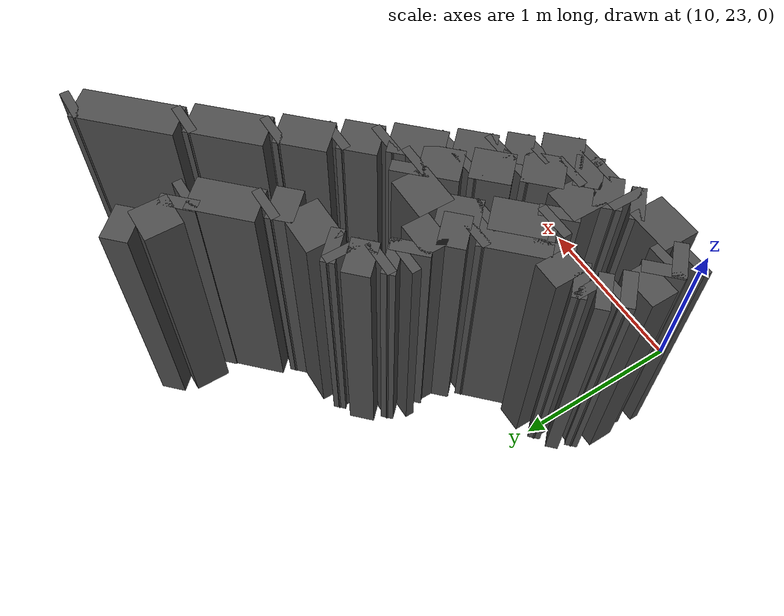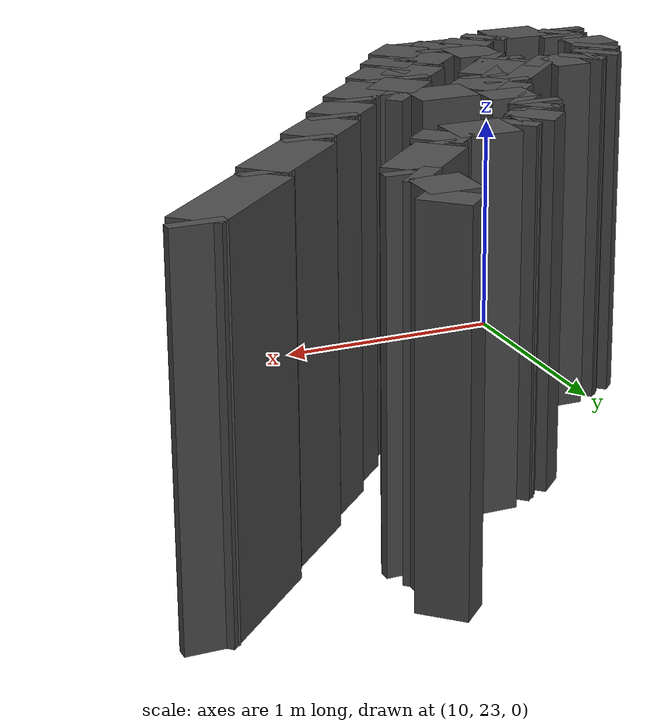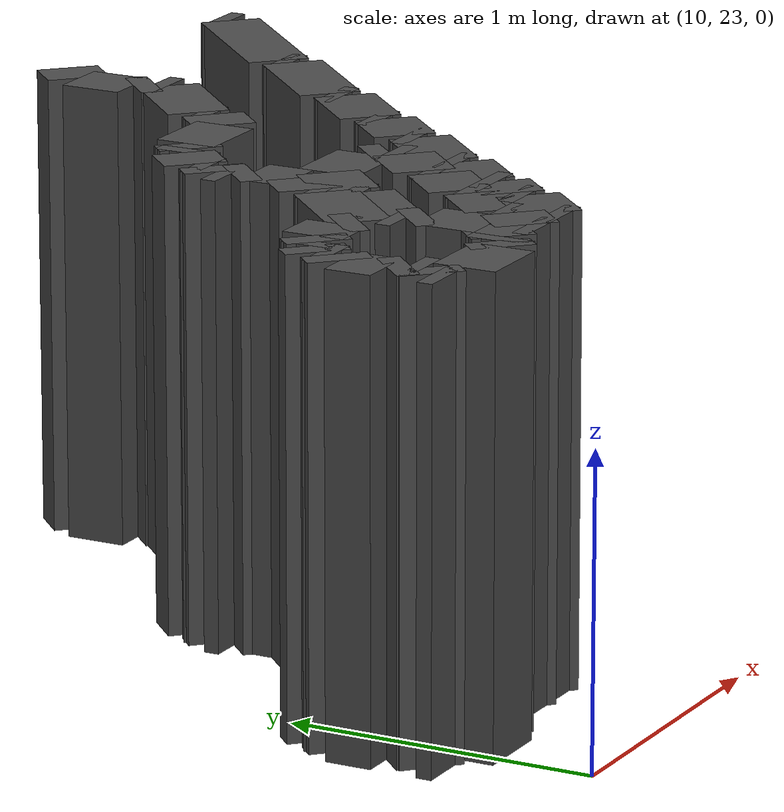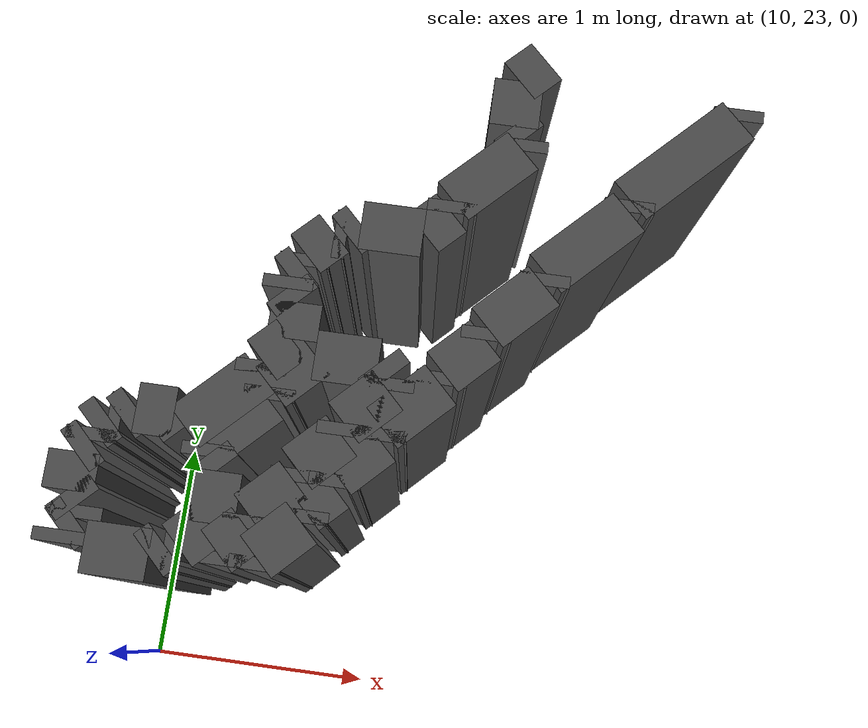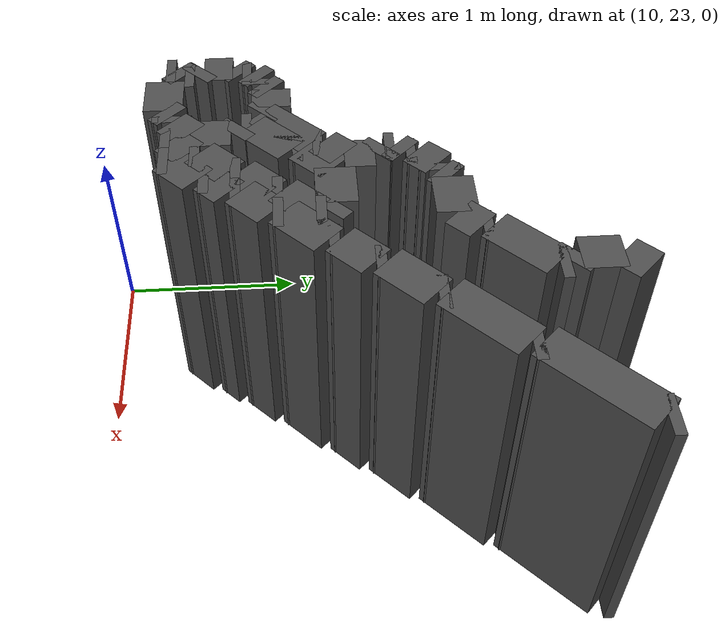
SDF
<sdf version="1.9">
 <model name="generated_walls">
  <static>true</static>
  <link name="wall_161_281">
   <pose>9.850 23.425 0.75 0 0 1.571</pose>
   <collision name="collision"><geometry><box><size>0.050 0.2 1.5</size></box></geometry></collision>
   <visual name="visual">
    <geometry><box><size>0.050 0.2 1.5</size></box></geometry>
    <material><ambient>0.3 0.3 0.3 1</ambient></material>
   </visual>
  </link>
  <link name="wall_161_282">
   <pose>9.875 23.475 0.75 0 0 0.785</pose>
   <collision name="collision"><geometry><box><size>0.071 0.2 1.5</size></box></geometry></collision>
   <visual name="visual">
    <geometry><box><size>0.071 0.2 1.5</size></box></geometry>
    <material><ambient>0.3 0.3 0.3 1</ambient></material>
   </visual>
  </link>
  <link name="wall_161_283">
   <pose>9.900 23.525 0.75 0 0 1.571</pose>
   <collision name="collision"><geometry><box><size>0.050 0.2 1.5</size></box></geometry></collision>
   <visual name="visual">
    <geometry><box><size>0.050 0.2 1.5</size></box></geometry>
    <material><ambient>0.3 0.3 0.3 1</ambient></material>
   </visual>
  </link>
  <link name="wall_161_284">
   <pose>9.875 23.575 0.75 0 0 2.356</pose>
   <collision name="collision"><geometry><box><size>0.071 0.2 1.5</size></box></geometry></collision>
   <visual name="visual">
    <geometry><box><size>0.071 0.2 1.5</size></box></geometry>
    <material><ambient>0.3 0.3 0.3 1</ambient></material>
   </visual>
  </link>
  <link name="wall_161_285">
   <pose>9.850 23.675 0.75 0 0 1.571</pose>
   <collision name="collision"><geometry><box><size>0.150 0.2 1.5</size></box></geometry></collision>
   <visual name="visual">
    <geometry><box><size>0.150 0.2 1.5</size></box></geometry>
    <material><ambient>0.3 0.3 0.3 1</ambient></material>
   </visual>
  </link>
  <link name="wall_161_286">
   <pose>9.875 23.775 0.75 0 0 0.785</pose>
   <collision name="collision"><geometry><box><size>0.071 0.2 1.5</size></box></geometry></collision>
   <visual name="visual">
    <geometry><box><size>0.071 0.2 1.5</size></box></geometry>
    <material><ambient>0.3 0.3 0.3 1</ambient></material>
   </visual>
  </link>
  <link name="wall_161_287">
   <pose>9.900 23.825 0.75 0 0 1.571</pose>
   <collision name="collision"><geometry><box><size>0.050 0.2 1.5</size></box></geometry></collision>
   <visual name="visual">
    <geometry><box><size>0.050 0.2 1.5</size></box></geometry>
    <material><ambient>0.3 0.3 0.3 1</ambient></material>
   </visual>
  </link>
  <link name="wall_161_288">
   <pose>9.925 23.875 0.75 0 0 0.785</pose>
   <collision name="collision"><geometry><box><size>0.071 0.2 1.5</size></box></geometry></collision>
   <visual name="visual">
    <geometry><box><size>0.071 0.2 1.5</size></box></geometry>
    <material><ambient>0.3 0.3 0.3 1</ambient></material>
   </visual>
  </link>
  <link name="wall_161_289">
   <pose>9.975 23.900 0.75 0 0 0.000</pose>
   <collision name="collision"><geometry><box><size>0.050 0.2 1.5</size></box></geometry></collision>
   <visual name="visual">
    <geometry><box><size>0.050 0.2 1.5</size></box></geometry>
    <material><ambient>0.3 0.3 0.3 1</ambient></material>
   </visual>
  </link>
  <link name="wall_161_290">
   <pose>10.025 23.925 0.75 0 0 0.785</pose>
   <collision name="collision"><geometry><box><size>0.071 0.2 1.5</size></box></geometry></collision>
   <visual name="visual">
    <geometry><box><size>0.071 0.2 1.5</size></box></geometry>
    <material><ambient>0.3 0.3 0.3 1</ambient></material>
   </visual>
  </link>
  <link name="wall_161_291">
   <pose>10.125 23.950 0.75 0 0 0.000</pose>
   <collision name="collision"><geometry><box><size>0.150 0.2 1.5</size></box></geometry></collision>
   <visual name="visual">
    <geometry><box><size>0.150 0.2 1.5</size></box></geometry>
    <material><ambient>0.3 0.3 0.3 1</ambient></material>
   </visual>
  </link>
  <link name="wall_161_292">
   <pose>10.225 23.925 0.75 0 0 -0.785</pose>
   <collision name="collision"><geometry><box><size>0.071 0.2 1.5</size></box></geometry></collision>
   <visual name="visual">
    <geometry><box><size>0.071 0.2 1.5</size></box></geometry>
    <material><ambient>0.3 0.3 0.3 1</ambient></material>
   </visual>
  </link>
  <link name="wall_161_293">
   <pose>10.375 24.025 0.75 0 0 0.785</pose>
   <collision name="collision"><geometry><box><size>0.354 0.2 1.5</size></box></geometry></collision>
   <visual name="visual">
    <geometry><box><size>0.354 0.2 1.5</size></box></geometry>
    <material><ambient>0.3 0.3 0.3 1</ambient></material>
   </visual>
  </link>
  <link name="wall_161_294">
   <pose>10.500 24.175 0.75 0 0 1.571</pose>
   <collision name="collision"><geometry><box><size>0.050 0.2 1.5</size></box></geometry></collision>
   <visual name="visual">
    <geometry><box><size>0.050 0.2 1.5</size></box></geometry>
    <material><ambient>0.3 0.3 0.3 1</ambient></material>
   </visual>
  </link>
  <link name="wall_161_295">
   <pose>10.550 24.250 0.75 0 0 0.785</pose>
   <collision name="collision"><geometry><box><size>0.141 0.2 1.5</size></box></geometry></collision>
   <visual name="visual">
    <geometry><box><size>0.141 0.2 1.5</size></box></geometry>
    <material><ambient>0.3 0.3 0.3 1</ambient></material>
   </visual>
  </link>
  <link name="wall_161_296">
   <pose>10.600 24.375 0.75 0 0 1.571</pose>
   <collision name="collision"><geometry><box><size>0.150 0.2 1.5</size></box></geometry></collision>
   <visual name="visual">
    <geometry><box><size>0.150 0.2 1.5</size></box></geometry>
    <material><ambient>0.3 0.3 0.3 1</ambient></material>
   </visual>
  </link>
  <link name="wall_161_297">
   <pose>10.575 24.475 0.75 0 0 2.356</pose>
   <collision name="collision"><geometry><box><size>0.071 0.2 1.5</size></box></geometry></collision>
   <visual name="visual">
    <geometry><box><size>0.071 0.2 1.5</size></box></geometry>
    <material><ambient>0.3 0.3 0.3 1</ambient></material>
   </visual>
  </link>
  <link name="wall_161_298">
   <pose>10.550 24.525 0.75 0 0 1.571</pose>
   <collision name="collision"><geometry><box><size>0.050 0.2 1.5</size></box></geometry></collision>
   <visual name="visual">
    <geometry><box><size>0.050 0.2 1.5</size></box></geometry>
    <material><ambient>0.3 0.3 0.3 1</ambient></material>
   </visual>
  </link>
  <link name="wall_161_299">
   <pose>10.575 24.575 0.75 0 0 0.785</pose>
   <collision name="collision"><geometry><box><size>0.071 0.2 1.5</size></box></geometry></collision>
   <visual name="visual">
    <geometry><box><size>0.071 0.2 1.5</size></box></geometry>
    <material><ambient>0.3 0.3 0.3 1</ambient></material>
   </visual>
  </link>
  <link name="wall_161_300">
   <pose>10.600 24.625 0.75 0 0 1.571</pose>
   <collision name="collision"><geometry><box><size>0.050 0.2 1.5</size></box></geometry></collision>
   <visual name="visual">
    <geometry><box><size>0.050 0.2 1.5</size></box></geometry>
    <material><ambient>0.3 0.3 0.3 1</ambient></material>
   </visual>
  </link>
  <link name="wall_161_301">
   <pose>10.650 24.700 0.75 0 0 0.785</pose>
   <collision name="collision"><geometry><box><size>0.141 0.2 1.5</size></box></geometry></collision>
   <visual name="visual">
    <geometry><box><size>0.141 0.2 1.5</size></box></geometry>
    <material><ambient>0.3 0.3 0.3 1</ambient></material>
   </visual>
  </link>
  <link name="wall_161_302">
   <pose>10.725 24.750 0.75 0 0 0.000</pose>
   <collision name="collision"><geometry><box><size>0.050 0.2 1.5</size></box></geometry></collision>
   <visual name="visual">
    <geometry><box><size>0.050 0.2 1.5</size></box></geometry>
    <material><ambient>0.3 0.3 0.3 1</ambient></material>
   </visual>
  </link>
  <link name="wall_161_303">
   <pose>10.775 24.775 0.75 0 0 0.785</pose>
   <collision name="collision"><geometry><box><size>0.071 0.2 1.5</size></box></geometry></collision>
   <visual name="visual">
    <geometry><box><size>0.071 0.2 1.5</size></box></geometry>
    <material><ambient>0.3 0.3 0.3 1</ambient></material>
   </visual>
  </link>
  <link name="wall_161_304">
   <pose>10.925 24.800 0.75 0 0 0.000</pose>
   <collision name="collision"><geometry><box><size>0.250 0.2 1.5</size></box></geometry></collision>
   <visual name="visual">
    <geometry><box><size>0.250 0.2 1.5</size></box></geometry>
    <material><ambient>0.3 0.3 0.3 1</ambient></material>
   </visual>
  </link>
  <link name="wall_161_305">
   <pose>11.100 24.850 0.75 0 0 0.785</pose>
   <collision name="collision"><geometry><box><size>0.141 0.2 1.5</size></box></geometry></collision>
   <visual name="visual">
    <geometry><box><size>0.141 0.2 1.5</size></box></geometry>
    <material><ambient>0.3 0.3 0.3 1</ambient></material>
   </visual>
  </link>
  <link name="wall_161_306">
   <pose>11.150 24.925 0.75 0 0 1.571</pose>
   <collision name="collision"><geometry><box><size>0.050 0.2 1.5</size></box></geometry></collision>
   <visual name="visual">
    <geometry><box><size>0.050 0.2 1.5</size></box></geometry>
    <material><ambient>0.3 0.3 0.3 1</ambient></material>
   </visual>
  </link>
  <link name="wall_161_307">
   <pose>11.275 25.075 0.75 0 0 0.785</pose>
   <collision name="collision"><geometry><box><size>0.354 0.2 1.5</size></box></geometry></collision>
   <visual name="visual">
    <geometry><box><size>0.354 0.2 1.5</size></box></geometry>
    <material><ambient>0.3 0.3 0.3 1</ambient></material>
   </visual>
  </link>
  <link name="wall_161_308">
   <pose>11.400 25.225 0.75 0 0 1.571</pose>
   <collision name="collision"><geometry><box><size>0.050 0.2 1.5</size></box></geometry></collision>
   <visual name="visual">
    <geometry><box><size>0.050 0.2 1.5</size></box></geometry>
    <material><ambient>0.3 0.3 0.3 1</ambient></material>
   </visual>
  </link>
  <link name="wall_161_309">
   <pose>11.375 25.275 0.75 0 0 2.356</pose>
   <collision name="collision"><geometry><box><size>0.071 0.2 1.5</size></box></geometry></collision>
   <visual name="visual">
    <geometry><box><size>0.071 0.2 1.5</size></box></geometry>
    <material><ambient>0.3 0.3 0.3 1</ambient></material>
   </visual>
  </link>
  <link name="wall_161_310">
   <pose>11.350 25.400 0.75 0 0 1.571</pose>
   <collision name="collision"><geometry><box><size>0.200 0.2 1.5</size></box></geometry></collision>
   <visual name="visual">
    <geometry><box><size>0.200 0.2 1.5</size></box></geometry>
    <material><ambient>0.3 0.3 0.3 1</ambient></material>
   </visual>
  </link>
  <link name="wall_161_311">
   <pose>11.400 25.550 0.75 0 0 0.785</pose>
   <collision name="collision"><geometry><box><size>0.141 0.2 1.5</size></box></geometry></collision>
   <visual name="visual">
    <geometry><box><size>0.141 0.2 1.5</size></box></geometry>
    <material><ambient>0.3 0.3 0.3 1</ambient></material>
   </visual>
  </link>
  <link name="wall_161_711">
   <pose>12.250 25.475 0.75 0 0 -1.571</pose>
   <collision name="collision"><geometry><box><size>0.050 0.2 1.5</size></box></geometry></collision>
   <visual name="visual">
    <geometry><box><size>0.050 0.2 1.5</size></box></geometry>
    <material><ambient>0.3 0.3 0.3 1</ambient></material>
   </visual>
  </link>
  <link name="wall_161_712">
   <pose>12.050 25.250 0.75 0 0 -2.356</pose>
   <collision name="collision"><geometry><box><size>0.566 0.2 1.5</size></box></geometry></collision>
   <visual name="visual">
    <geometry><box><size>0.566 0.2 1.5</size></box></geometry>
    <material><ambient>0.3 0.3 0.3 1</ambient></material>
   </visual>
  </link>
  <link name="wall_161_713">
   <pose>11.850 25.025 0.75 0 0 -1.571</pose>
   <collision name="collision"><geometry><box><size>0.050 0.2 1.5</size></box></geometry></collision>
   <visual name="visual">
    <geometry><box><size>0.050 0.2 1.5</size></box></geometry>
    <material><ambient>0.3 0.3 0.3 1</ambient></material>
   </visual>
  </link>
  <link name="wall_161_714">
   <pose>11.700 24.850 0.75 0 0 -2.356</pose>
   <collision name="collision"><geometry><box><size>0.424 0.2 1.5</size></box></geometry></collision>
   <visual name="visual">
    <geometry><box><size>0.424 0.2 1.5</size></box></geometry>
    <material><ambient>0.3 0.3 0.3 1</ambient></material>
   </visual>
  </link>
  <link name="wall_161_715">
   <pose>11.550 24.675 0.75 0 0 -1.571</pose>
   <collision name="collision"><geometry><box><size>0.050 0.2 1.5</size></box></geometry></collision>
   <visual name="visual">
    <geometry><box><size>0.050 0.2 1.5</size></box></geometry>
    <material><ambient>0.3 0.3 0.3 1</ambient></material>
   </visual>
  </link>
  <link name="wall_161_716">
   <pose>11.450 24.550 0.75 0 0 -2.356</pose>
   <collision name="collision"><geometry><box><size>0.283 0.2 1.5</size></box></geometry></collision>
   <visual name="visual">
    <geometry><box><size>0.283 0.2 1.5</size></box></geometry>
    <material><ambient>0.3 0.3 0.3 1</ambient></material>
   </visual>
  </link>
  <link name="wall_161_717">
   <pose>11.350 24.425 0.75 0 0 -1.571</pose>
   <collision name="collision"><geometry><box><size>0.050 0.2 1.5</size></box></geometry></collision>
   <visual name="visual">
    <geometry><box><size>0.050 0.2 1.5</size></box></geometry>
    <material><ambient>0.3 0.3 0.3 1</ambient></material>
   </visual>
  </link>
  <link name="wall_161_718">
   <pose>11.275 24.325 0.75 0 0 -2.356</pose>
   <collision name="collision"><geometry><box><size>0.212 0.2 1.5</size></box></geometry></collision>
   <visual name="visual">
    <geometry><box><size>0.212 0.2 1.5</size></box></geometry>
    <material><ambient>0.3 0.3 0.3 1</ambient></material>
   </visual>
  </link>
  <link name="wall_161_719">
   <pose>11.200 24.225 0.75 0 0 -1.571</pose>
   <collision name="collision"><geometry><box><size>0.050 0.2 1.5</size></box></geometry></collision>
   <visual name="visual">
    <geometry><box><size>0.050 0.2 1.5</size></box></geometry>
    <material><ambient>0.3 0.3 0.3 1</ambient></material>
   </visual>
  </link>
  <link name="wall_161_720">
   <pose>11.100 24.100 0.75 0 0 -2.356</pose>
   <collision name="collision"><geometry><box><size>0.283 0.2 1.5</size></box></geometry></collision>
   <visual name="visual">
    <geometry><box><size>0.283 0.2 1.5</size></box></geometry>
    <material><ambient>0.3 0.3 0.3 1</ambient></material>
   </visual>
  </link>
  <link name="wall_161_721">
   <pose>11.000 23.975 0.75 0 0 -1.571</pose>
   <collision name="collision"><geometry><box><size>0.050 0.2 1.5</size></box></geometry></collision>
   <visual name="visual">
    <geometry><box><size>0.050 0.2 1.5</size></box></geometry>
    <material><ambient>0.3 0.3 0.3 1</ambient></material>
   </visual>
  </link>
  <link name="wall_161_722">
   <pose>10.925 23.875 0.75 0 0 -2.356</pose>
   <collision name="collision"><geometry><box><size>0.212 0.2 1.5</size></box></geometry></collision>
   <visual name="visual">
    <geometry><box><size>0.212 0.2 1.5</size></box></geometry>
    <material><ambient>0.3 0.3 0.3 1</ambient></material>
   </visual>
  </link>
  <link name="wall_161_723">
   <pose>10.850 23.775 0.75 0 0 -1.571</pose>
   <collision name="collision"><geometry><box><size>0.050 0.2 1.5</size></box></geometry></collision>
   <visual name="visual">
    <geometry><box><size>0.050 0.2 1.5</size></box></geometry>
    <material><ambient>0.3 0.3 0.3 1</ambient></material>
   </visual>
  </link>
  <link name="wall_161_724">
   <pose>10.800 23.700 0.75 0 0 -2.356</pose>
   <collision name="collision"><geometry><box><size>0.141 0.2 1.5</size></box></geometry></collision>
   <visual name="visual">
    <geometry><box><size>0.141 0.2 1.5</size></box></geometry>
    <material><ambient>0.3 0.3 0.3 1</ambient></material>
   </visual>
  </link>
  <link name="wall_161_725">
   <pose>10.750 23.625 0.75 0 0 -1.571</pose>
   <collision name="collision"><geometry><box><size>0.050 0.2 1.5</size></box></geometry></collision>
   <visual name="visual">
    <geometry><box><size>0.050 0.2 1.5</size></box></geometry>
    <material><ambient>0.3 0.3 0.3 1</ambient></material>
   </visual>
  </link>
  <link name="wall_161_726">
   <pose>10.675 23.525 0.75 0 0 -2.356</pose>
   <collision name="collision"><geometry><box><size>0.212 0.2 1.5</size></box></geometry></collision>
   <visual name="visual">
    <geometry><box><size>0.212 0.2 1.5</size></box></geometry>
    <material><ambient>0.3 0.3 0.3 1</ambient></material>
   </visual>
  </link>
  <link name="wall_161_727">
   <pose>10.600 23.425 0.75 0 0 -1.571</pose>
   <collision name="collision"><geometry><box><size>0.050 0.2 1.5</size></box></geometry></collision>
   <visual name="visual">
    <geometry><box><size>0.050 0.2 1.5</size></box></geometry>
    <material><ambient>0.3 0.3 0.3 1</ambient></material>
   </visual>
  </link>
  <link name="wall_161_815">
   <pose>10.450 23.425 0.75 0 0 1.571</pose>
   <collision name="collision"><geometry><box><size>0.050 0.2 1.5</size></box></geometry></collision>
   <visual name="visual">
    <geometry><box><size>0.050 0.2 1.5</size></box></geometry>
    <material><ambient>0.3 0.3 0.3 1</ambient></material>
   </visual>
  </link>
  <link name="wall_161_816">
   <pose>10.500 23.500 0.75 0 0 0.785</pose>
   <collision name="collision"><geometry><box><size>0.141 0.2 1.5</size></box></geometry></collision>
   <visual name="visual">
    <geometry><box><size>0.141 0.2 1.5</size></box></geometry>
    <material><ambient>0.3 0.3 0.3 1</ambient></material>
   </visual>
  </link>
  <link name="wall_161_817">
   <pose>10.550 23.575 0.75 0 0 1.571</pose>
   <collision name="collision"><geometry><box><size>0.050 0.2 1.5</size></box></geometry></collision>
   <visual name="visual">
    <geometry><box><size>0.050 0.2 1.5</size></box></geometry>
    <material><ambient>0.3 0.3 0.3 1</ambient></material>
   </visual>
  </link>
  <link name="wall_161_818">
   <pose>10.625 23.675 0.75 0 0 0.785</pose>
   <collision name="collision"><geometry><box><size>0.212 0.2 1.5</size></box></geometry></collision>
   <visual name="visual">
    <geometry><box><size>0.212 0.2 1.5</size></box></geometry>
    <material><ambient>0.3 0.3 0.3 1</ambient></material>
   </visual>
  </link>
  <link name="wall_161_819">
   <pose>10.700 23.775 0.75 0 0 1.571</pose>
   <collision name="collision"><geometry><box><size>0.050 0.2 1.5</size></box></geometry></collision>
   <visual name="visual">
    <geometry><box><size>0.050 0.2 1.5</size></box></geometry>
    <material><ambient>0.3 0.3 0.3 1</ambient></material>
   </visual>
  </link>
  <link name="wall_161_820">
   <pose>10.775 23.875 0.75 0 0 0.785</pose>
   <collision name="collision"><geometry><box><size>0.212 0.2 1.5</size></box></geometry></collision>
   <visual name="visual">
    <geometry><box><size>0.212 0.2 1.5</size></box></geometry>
    <material><ambient>0.3 0.3 0.3 1</ambient></material>
   </visual>
  </link>
  <link name="wall_161_821">
   <pose>10.850 23.975 0.75 0 0 1.571</pose>
   <collision name="collision"><geometry><box><size>0.050 0.2 1.5</size></box></geometry></collision>
   <visual name="visual">
    <geometry><box><size>0.050 0.2 1.5</size></box></geometry>
    <material><ambient>0.3 0.3 0.3 1</ambient></material>
   </visual>
  </link>
  <link name="wall_161_822">
   <pose>10.925 24.075 0.75 0 0 0.785</pose>
   <collision name="collision"><geometry><box><size>0.212 0.2 1.5</size></box></geometry></collision>
   <visual name="visual">
    <geometry><box><size>0.212 0.2 1.5</size></box></geometry>
    <material><ambient>0.3 0.3 0.3 1</ambient></material>
   </visual>
  </link>
  <link name="wall_161_823">
   <pose>11.000 24.175 0.75 0 0 1.571</pose>
   <collision name="collision"><geometry><box><size>0.050 0.2 1.5</size></box></geometry></collision>
   <visual name="visual">
    <geometry><box><size>0.050 0.2 1.5</size></box></geometry>
    <material><ambient>0.3 0.3 0.3 1</ambient></material>
   </visual>
  </link>
  <link name="wall_161_824">
   <pose>10.975 24.225 0.75 0 0 2.356</pose>
   <collision name="collision"><geometry><box><size>0.071 0.2 1.5</size></box></geometry></collision>
   <visual name="visual">
    <geometry><box><size>0.071 0.2 1.5</size></box></geometry>
    <material><ambient>0.3 0.3 0.3 1</ambient></material>
   </visual>
  </link>
  <link name="wall_161_825">
   <pose>10.825 24.250 0.75 0 0 3.142</pose>
   <collision name="collision"><geometry><box><size>0.250 0.2 1.5</size></box></geometry></collision>
   <visual name="visual">
    <geometry><box><size>0.250 0.2 1.5</size></box></geometry>
    <material><ambient>0.3 0.3 0.3 1</ambient></material>
   </visual>
  </link>
  <link name="wall_161_826">
   <pose>10.625 24.175 0.75 0 0 -2.356</pose>
   <collision name="collision"><geometry><box><size>0.212 0.2 1.5</size></box></geometry></collision>
   <visual name="visual">
    <geometry><box><size>0.212 0.2 1.5</size></box></geometry>
    <material><ambient>0.3 0.3 0.3 1</ambient></material>
   </visual>
  </link>
  <link name="wall_161_827">
   <pose>10.550 24.075 0.75 0 0 -1.571</pose>
   <collision name="collision"><geometry><box><size>0.050 0.2 1.5</size></box></geometry></collision>
   <visual name="visual">
    <geometry><box><size>0.050 0.2 1.5</size></box></geometry>
    <material><ambient>0.3 0.3 0.3 1</ambient></material>
   </visual>
  </link>
  <link name="wall_161_828">
   <pose>10.450 23.950 0.75 0 0 -2.356</pose>
   <collision name="collision"><geometry><box><size>0.283 0.2 1.5</size></box></geometry></collision>
   <visual name="visual">
    <geometry><box><size>0.283 0.2 1.5</size></box></geometry>
    <material><ambient>0.3 0.3 0.3 1</ambient></material>
   </visual>
  </link>
  <link name="wall_161_829">
   <pose>10.350 23.825 0.75 0 0 -1.571</pose>
   <collision name="collision"><geometry><box><size>0.050 0.2 1.5</size></box></geometry></collision>
   <visual name="visual">
    <geometry><box><size>0.050 0.2 1.5</size></box></geometry>
    <material><ambient>0.3 0.3 0.3 1</ambient></material>
   </visual>
  </link>
  <link name="wall_161_830">
   <pose>10.375 23.775 0.75 0 0 -0.785</pose>
   <collision name="collision"><geometry><box><size>0.071 0.2 1.5</size></box></geometry></collision>
   <visual name="visual">
    <geometry><box><size>0.071 0.2 1.5</size></box></geometry>
    <material><ambient>0.3 0.3 0.3 1</ambient></material>
   </visual>
  </link>
  <link name="wall_161_831">
   <pose>10.400 23.650 0.75 0 0 -1.571</pose>
   <collision name="collision"><geometry><box><size>0.200 0.2 1.5</size></box></geometry></collision>
   <visual name="visual">
    <geometry><box><size>0.200 0.2 1.5</size></box></geometry>
    <material><ambient>0.3 0.3 0.3 1</ambient></material>
   </visual>
  </link>
  <link name="wall_161_832">
   <pose>10.350 23.500 0.75 0 0 -2.356</pose>
   <collision name="collision"><geometry><box><size>0.141 0.2 1.5</size></box></geometry></collision>
   <visual name="visual">
    <geometry><box><size>0.141 0.2 1.5</size></box></geometry>
    <material><ambient>0.3 0.3 0.3 1</ambient></material>
   </visual>
  </link>
  <link name="wall_161_833">
   <pose>10.275 23.450 0.75 0 0 3.142</pose>
   <collision name="collision"><geometry><box><size>0.050 0.2 1.5</size></box></geometry></collision>
   <visual name="visual">
    <geometry><box><size>0.050 0.2 1.5</size></box></geometry>
    <material><ambient>0.3 0.3 0.3 1</ambient></material>
   </visual>
  </link>
  <link name="wall_161_834">
   <pose>10.225 23.425 0.75 0 0 -2.356</pose>
   <collision name="collision"><geometry><box><size>0.071 0.2 1.5</size></box></geometry></collision>
   <visual name="visual">
    <geometry><box><size>0.071 0.2 1.5</size></box></geometry>
    <material><ambient>0.3 0.3 0.3 1</ambient></material>
   </visual>
  </link>
  <link name="wall_161_835">
   <pose>10.075 23.400 0.75 0 0 3.142</pose>
   <collision name="collision"><geometry><box><size>0.250 0.2 1.5</size></box></geometry></collision>
   <visual name="visual">
    <geometry><box><size>0.250 0.2 1.5</size></box></geometry>
    <material><ambient>0.3 0.3 0.3 1</ambient></material>
   </visual>
  </link>
 </model>
</sdf>
